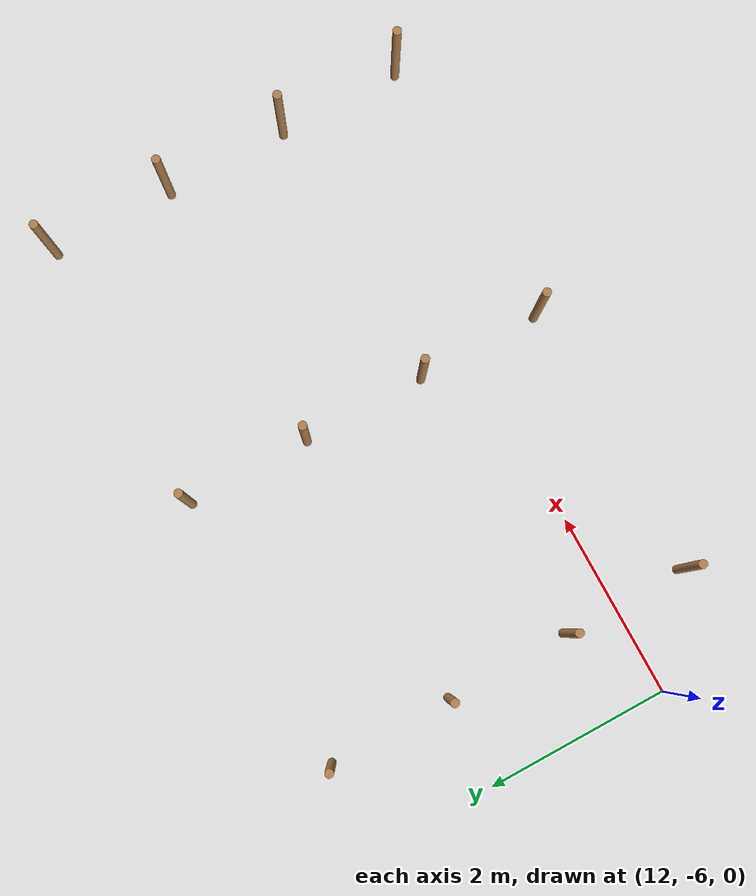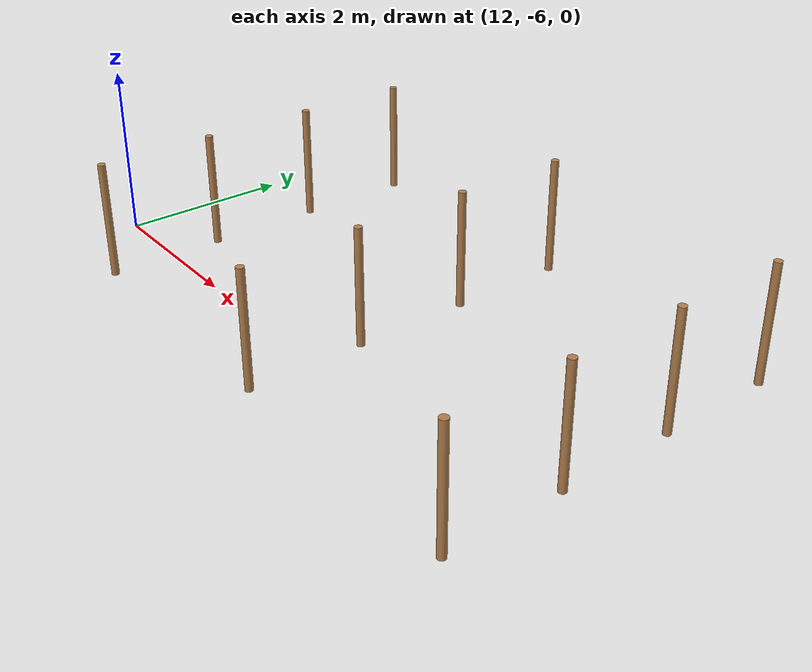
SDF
<sdf version="1.4">
 <world name="default">
  <model name="pole_10">
   <static>1</static>
   <pose>13.000 -6.750 0.691 0.0 0.0 0.0</pose>
   <link name="link">
    <collision name="collision">
     <geometry><cylinder><length>1.38235</length><radius>0.0456111</radius></cylinder></geometry>
    </collision>
    <visual name="visual">
     <geometry><cylinder><length>1.38235</length><radius>0.0456111</radius></cylinder></geometry>
     <material>
      <script><uri>file://media/materials/scripts/gazebo.material</uri><name>Gazebo/WoodFloor</name></script>
      <shader type="vertex"><normal_map>__default__</normal_map></shader>
      <emissive>0 0 0 1</emissive>
      <specular>0.01 0.01 0.01 1</specular>
      <ambient>0.9 0.9 0.9 1</ambient>
      <diffuse>0.09 0.09 0.09 1</diffuse>
     </material>
    </visual>
   </link>
  </model>
  <model name="pole_11">
   <static>1</static>
   <pose>13.000 -5.400 0.691 0.0 0.0 0.0</pose>
   <link name="link">
    <collision name="collision">
     <geometry><cylinder><length>1.38235</length><radius>0.0456111</radius></cylinder></geometry>
    </collision>
    <visual name="visual">
     <geometry><cylinder><length>1.38235</length><radius>0.0456111</radius></cylinder></geometry>
     <material>
      <script><uri>file://media/materials/scripts/gazebo.material</uri><name>Gazebo/WoodFloor</name></script>
      <shader type="vertex"><normal_map>__default__</normal_map></shader>
      <emissive>0 0 0 1</emissive>
      <specular>0.01 0.01 0.01 1</specular>
      <ambient>0.9 0.9 0.9 1</ambient>
      <diffuse>0.09 0.09 0.09 1</diffuse>
     </material>
    </visual>
   </link>
  </model>
  <model name="pole_12">
   <static>1</static>
   <pose>13.000 -4.050 0.691 0.0 0.0 0.0</pose>
   <link name="link">
    <collision name="collision">
     <geometry><cylinder><length>1.38235</length><radius>0.0456111</radius></cylinder></geometry>
    </collision>
    <visual name="visual">
     <geometry><cylinder><length>1.38235</length><radius>0.0456111</radius></cylinder></geometry>
     <material>
      <script><uri>file://media/materials/scripts/gazebo.material</uri><name>Gazebo/WoodFloor</name></script>
      <shader type="vertex"><normal_map>__default__</normal_map></shader>
      <emissive>0 0 0 1</emissive>
      <specular>0.01 0.01 0.01 1</specular>
      <ambient>0.9 0.9 0.9 1</ambient>
      <diffuse>0.09 0.09 0.09 1</diffuse>
     </material>
    </visual>
   </link>
  </model>
  <model name="pole_13">
   <static>1</static>
   <pose>13.000 -2.700 0.691 0.0 0.0 0.0</pose>
   <link name="link">
    <collision name="collision">
     <geometry><cylinder><length>1.38235</length><radius>0.0456111</radius></cylinder></geometry>
    </collision>
    <visual name="visual">
     <geometry><cylinder><length>1.38235</length><radius>0.0456111</radius></cylinder></geometry>
     <material>
      <script><uri>file://media/materials/scripts/gazebo.material</uri><name>Gazebo/WoodFloor</name></script>
      <shader type="vertex"><normal_map>__default__</normal_map></shader>
      <emissive>0 0 0 1</emissive>
      <specular>0.01 0.01 0.01 1</specular>
      <ambient>0.9 0.9 0.9 1</ambient>
      <diffuse>0.09 0.09 0.09 1</diffuse>
     </material>
    </visual>
   </link>
  </model>
  <model name="pole_15">
   <static>1</static>
   <pose>16.000 -6.750 0.691 0.0 0.0 0.0</pose>
   <link name="link">
    <collision name="collision">
     <geometry><cylinder><length>1.38235</length><radius>0.0456111</radius></cylinder></geometry>
    </collision>
    <visual name="visual">
     <geometry><cylinder><length>1.38235</length><radius>0.0456111</radius></cylinder></geometry>
     <material>
      <script><uri>file://media/materials/scripts/gazebo.material</uri><name>Gazebo/WoodFloor</name></script>
      <shader type="vertex"><normal_map>__default__</normal_map></shader>
      <emissive>0 0 0 1</emissive>
      <specular>0.01 0.01 0.01 1</specular>
      <ambient>0.9 0.9 0.9 1</ambient>
      <diffuse>0.09 0.09 0.09 1</diffuse>
     </material>
    </visual>
   </link>
  </model>
  <model name="pole_16">
   <static>1</static>
   <pose>16.000 -5.400 0.691 0.0 0.0 0.0</pose>
   <link name="link">
    <collision name="collision">
     <geometry><cylinder><length>1.38235</length><radius>0.0456111</radius></cylinder></geometry>
    </collision>
    <visual name="visual">
     <geometry><cylinder><length>1.38235</length><radius>0.0456111</radius></cylinder></geometry>
     <material>
      <script><uri>file://media/materials/scripts/gazebo.material</uri><name>Gazebo/WoodFloor</name></script>
      <shader type="vertex"><normal_map>__default__</normal_map></shader>
      <emissive>0 0 0 1</emissive>
      <specular>0.01 0.01 0.01 1</specular>
      <ambient>0.9 0.9 0.9 1</ambient>
      <diffuse>0.09 0.09 0.09 1</diffuse>
     </material>
    </visual>
   </link>
  </model>
  <model name="pole_17">
   <static>1</static>
   <pose>16.000 -4.050 0.691 0.0 0.0 0.0</pose>
   <link name="link">
    <collision name="collision">
     <geometry><cylinder><length>1.38235</length><radius>0.0456111</radius></cylinder></geometry>
    </collision>
    <visual name="visual">
     <geometry><cylinder><length>1.38235</length><radius>0.0456111</radius></cylinder></geometry>
     <material>
      <script><uri>file://media/materials/scripts/gazebo.material</uri><name>Gazebo/WoodFloor</name></script>
      <shader type="vertex"><normal_map>__default__</normal_map></shader>
      <emissive>0 0 0 1</emissive>
      <specular>0.01 0.01 0.01 1</specular>
      <ambient>0.9 0.9 0.9 1</ambient>
      <diffuse>0.09 0.09 0.09 1</diffuse>
     </material>
    </visual>
   </link>
  </model>
  <model name="pole_18">
   <static>1</static>
   <pose>16.000 -2.700 0.691 0.0 0.0 0.0</pose>
   <link name="link">
    <collision name="collision">
     <geometry><cylinder><length>1.38235</length><radius>0.0456111</radius></cylinder></geometry>
    </collision>
    <visual name="visual">
     <geometry><cylinder><length>1.38235</length><radius>0.0456111</radius></cylinder></geometry>
     <material>
      <script><uri>file://media/materials/scripts/gazebo.material</uri><name>Gazebo/WoodFloor</name></script>
      <shader type="vertex"><normal_map>__default__</normal_map></shader>
      <emissive>0 0 0 1</emissive>
      <specular>0.01 0.01 0.01 1</specular>
      <ambient>0.9 0.9 0.9 1</ambient>
      <diffuse>0.09 0.09 0.09 1</diffuse>
     </material>
    </visual>
   </link>
  </model>
  <model name="pole_20">
   <static>1</static>
   <pose>19.000 -6.750 0.691 0.0 0.0 0.0</pose>
   <link name="link">
    <collision name="collision">
     <geometry><cylinder><length>1.38235</length><radius>0.0456111</radius></cylinder></geometry>
    </collision>
    <visual name="visual">
     <geometry><cylinder><length>1.38235</length><radius>0.0456111</radius></cylinder></geometry>
     <material>
      <script><uri>file://media/materials/scripts/gazebo.material</uri><name>Gazebo/WoodFloor</name></script>
      <shader type="vertex"><normal_map>__default__</normal_map></shader>
      <emissive>0 0 0 1</emissive>
      <specular>0.01 0.01 0.01 1</specular>
      <ambient>0.9 0.9 0.9 1</ambient>
      <diffuse>0.09 0.09 0.09 1</diffuse>
     </material>
    </visual>
   </link>
  </model>
  <model name="pole_21">
   <static>1</static>
   <pose>19.000 -5.400 0.691 0.0 0.0 0.0</pose>
   <link name="link">
    <collision name="collision">
     <geometry><cylinder><length>1.38235</length><radius>0.0456111</radius></cylinder></geometry>
    </collision>
    <visual name="visual">
     <geometry><cylinder><length>1.38235</length><radius>0.0456111</radius></cylinder></geometry>
     <material>
      <script><uri>file://media/materials/scripts/gazebo.material</uri><name>Gazebo/WoodFloor</name></script>
      <shader type="vertex"><normal_map>__default__</normal_map></shader>
      <emissive>0 0 0 1</emissive>
      <specular>0.01 0.01 0.01 1</specular>
      <ambient>0.9 0.9 0.9 1</ambient>
      <diffuse>0.09 0.09 0.09 1</diffuse>
     </material>
    </visual>
   </link>
  </model>
  <model name="pole_22">
   <static>1</static>
   <pose>19.000 -4.050 0.691 0.0 0.0 0.0</pose>
   <link name="link">
    <collision name="collision">
     <geometry><cylinder><length>1.38235</length><radius>0.0456111</radius></cylinder></geometry>
    </collision>
    <visual name="visual">
     <geometry><cylinder><length>1.38235</length><radius>0.0456111</radius></cylinder></geometry>
     <material>
      <script><uri>file://media/materials/scripts/gazebo.material</uri><name>Gazebo/WoodFloor</name></script>
      <shader type="vertex"><normal_map>__default__</normal_map></shader>
      <emissive>0 0 0 1</emissive>
      <specular>0.01 0.01 0.01 1</specular>
      <ambient>0.9 0.9 0.9 1</ambient>
      <diffuse>0.09 0.09 0.09 1</diffuse>
     </material>
    </visual>
   </link>
  </model>
  <model name="pole_23">
   <static>1</static>
   <pose>19.000 -2.700 0.691 0.0 0.0 0.0</pose>
   <link name="link">
    <collision name="collision">
     <geometry><cylinder><length>1.38235</length><radius>0.0456111</radius></cylinder></geometry>
    </collision>
    <visual name="visual">
     <geometry><cylinder><length>1.38235</length><radius>0.0456111</radius></cylinder></geometry>
     <material>
      <script><uri>file://media/materials/scripts/gazebo.material</uri><name>Gazebo/WoodFloor</name></script>
      <shader type="vertex"><normal_map>__default__</normal_map></shader>
      <emissive>0 0 0 1</emissive>
      <specular>0.01 0.01 0.01 1</specular>
      <ambient>0.9 0.9 0.9 1</ambient>
      <diffuse>0.09 0.09 0.09 1</diffuse>
     </material>
    </visual>
   </link>
  </model>
  <include><uri>model://sun</uri></include>
 </world>
</sdf>
